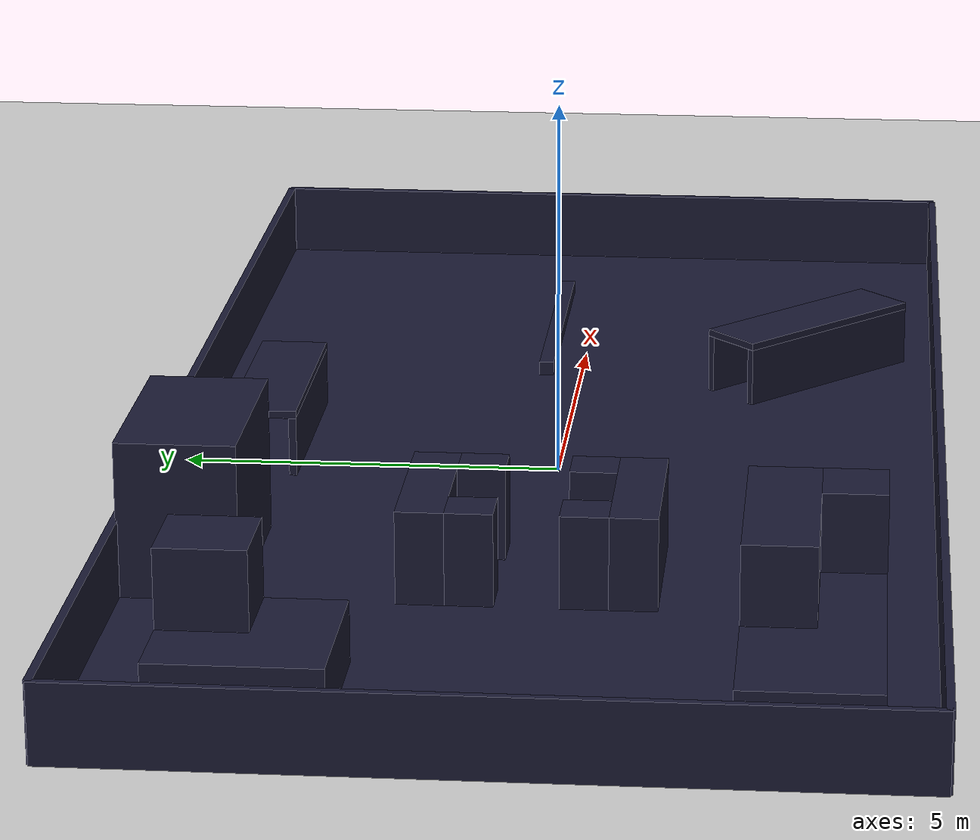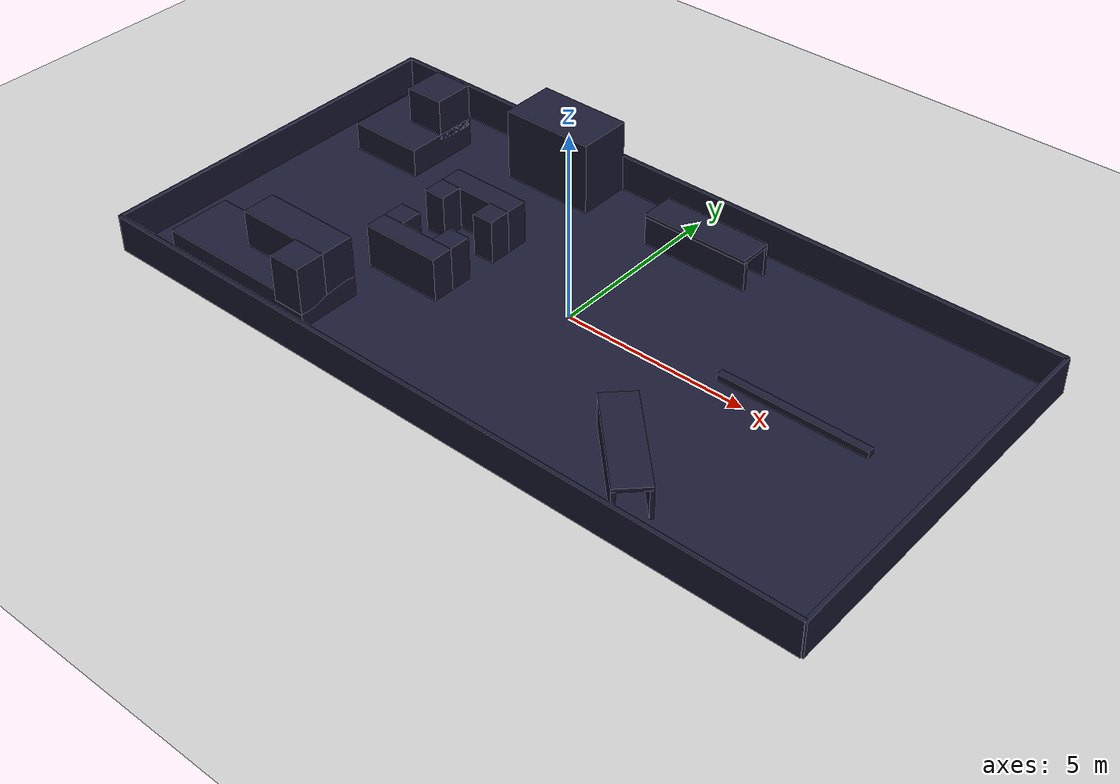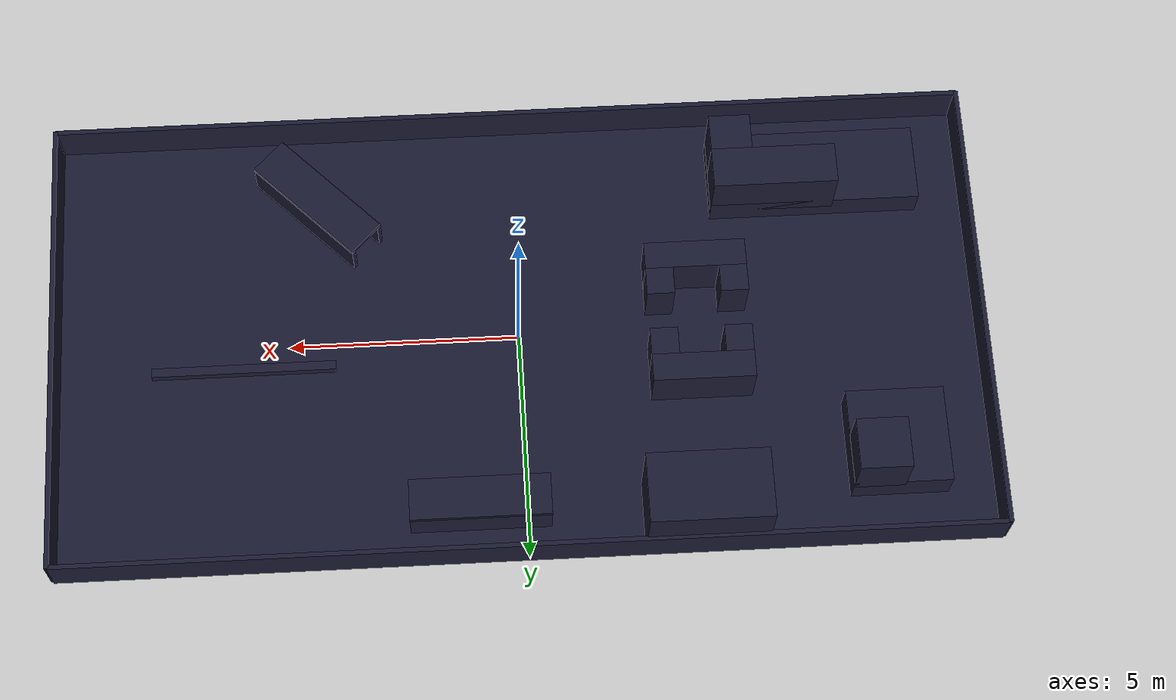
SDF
<?xml version="1.0" ?>
<sdf version="1.5">
  <world name="default">
    <physics type="ode">
        <ode>
            <solver>
                <iters>150</iters>
            </solver>
        </ode>
    </physics>
    <include>
      <uri>model://sun</uri>
    </include>

    <include>
      <uri>model://ground_plane</uri>
    </include>

    <model name="arena">
        <pose>0 0 0 0 0 0</pose>
        <static>true</static>
        <link name="link">
            <inertial>
                <mass>0.0</mass>
                <inertia>
                    <ixx>0.0</ixx>
                    <ixy>0.0</ixy>
                    <ixz>0.0</ixz>
                    <iyy>0.0</iyy>
                    <iyz>0.0</iyz>
                    <izz>0.0</izz>
                </inertia>
            </inertial>
            <collision name="collision">
                <geometry>
                    <box>
                        <size>20.05 10.05 0.005</size>
                    </box>
                </geometry>
            </collision>
            <visual name="visual">
                <geometry>
                    <box>
                        <size>20.05 10.05 0.005</size>
                    </box>
                </geometry>
                <material>
                    <ambient>0.0 0.9 0.0 1</ambient>
                    <diffuse>0.1 0.1 0.2 1</diffuse>
                    <specular>0 0 0 0</specular>
                    <emissive>0 0 0 1</emissive>
                </material>
            </visual>
        </link>
        <link name="link2">
            <pose>0 0 0.005 0 0 0</pose>
            <inertial>
                <mass>0.0</mass>
                <inertia>
                    <ixx>0.0</ixx>
                    <ixy>0.0</ixy>
                    <ixz>0.0</ixz>
                    <iyy>0.0</iyy>
                    <iyz>0.0</iyz>
                    <izz>0.0</izz>
                </inertia>
            </inertial>
            <collision name="collision">
                <geometry>
                    <box>
                        <size>20 10 0.005</size>
                    </box>
                </geometry>
            </collision>
            <visual name="visual">
                <geometry>
                    <box>
                        <size>20 10 0.005</size>
                    </box>
                </geometry>
                <material>
                    <ambient>0.9 0.9 0.9 1</ambient>
                    <diffuse>0.1 0.1 0.2 1</diffuse>
                    <specular>0 0 0 0</specular>
                    <emissive>0 0 0 1</emissive>
                </material>
            </visual>
        </link>
    </model>

<!-- Wall 1 (Top) -->
    <model name="wall1">
      <pose>0 5.025 0.5 0 0 0</pose>
      <static>true</static>
      <link name="link">
            <inertial>
                <mass>1000.0</mass>
                <inertia>
                    <ixx>0.0</ixx>
                    <ixy>0.0</ixy>
                    <ixz>0.0</ixz>
                    <iyy>0.0</iyy>
                    <iyz>0.0</iyz>
                    <izz>0.0</izz>
                </inertia>
            </inertial>
        <collision name="collision">
          <geometry>
            <box>
              <size>20.1 0.1 1</size>
            </box>
          </geometry>
        </collision>
        <visual name="visual">
          <geometry>
            <box>
              <size>20.1 0.1 1</size>
            </box>
          </geometry>
          <material>
              <ambient>0.9 0.3 0.9 1</ambient>
              <diffuse>0.1 0.1 0.2 1</diffuse>
              <specular>0 0 0 0</specular>
              <emissive>0 0 0 1</emissive>
          </material>
        </visual>
      </link>
    </model>

    <!-- Wall 2 (Bottom) -->
    <model name="wall2">
      <pose>0 -5.025 0.5 0 0 0</pose>
      <static>true</static>
      <link name="link">
            <inertial>
                <mass>1000.0</mass>
                <inertia>
                    <ixx>0.0</ixx>
                    <ixy>0.0</ixy>
                    <ixz>0.0</ixz>
                    <iyy>0.0</iyy>
                    <iyz>0.0</iyz>
                    <izz>0.0</izz>
                </inertia>
            </inertial>
        <collision name="collision">
          <geometry>
            <box>
              <size>20.1 0.1 1</size>
            </box>
          </geometry>
        </collision>
        <visual name="visual">
          <geometry>
            <box>
              <size>20.1 0.1 1</size>
            </box>
          </geometry>
          <material>
            <ambient>0.9 0.3 0.9 1</ambient>
            <diffuse>0.1 0.1 0.2 1</diffuse>
            <specular>0 0 0 0</specular>
            <emissive>0 0 0 1</emissive>
          </material>
        </visual>
      </link>
    </model>

    <!-- Wall 3 (Left) -->
    <model name="wall3">
      <pose>-10.05 0 0.5 0 0 0</pose>
      <static>true</static>
      <link name="link">
            <inertial>
                <mass>1000.0</mass>
                <inertia>
                    <ixx>0.0</ixx>
                    <ixy>0.0</ixy>
                    <ixz>0.0</ixz>
                    <iyy>0.0</iyy>
                    <iyz>0.0</iyz>
                    <izz>0.0</izz>
                </inertia>
            </inertial>
        <collision name="collision">
          <geometry>
            <box>
              <size>0.1 10.1 1</size>
            </box>
          </geometry>
        </collision>
        <visual name="visual">
          <geometry>
            <box>
              <size>0.1 10.1 1</size>
            </box>
          </geometry>
          <material>
            <ambient>0.9 0.3 0.9 1</ambient>
        <diffuse>0.1 0.1 0.2 1</diffuse>
            <specular>0 0 0 0</specular>
            <emissive>0 0 0 1</emissive>
          </material>
        </visual>
      </link>
    </model>

    <!-- Wall 4 (Right) -->
    <model name="wall4">
      <pose>10.05 0 0.5 0 0 0</pose>
      <static>true</static>
      <link name="link">
        <inertial>
                <mass>1000.0</mass>
                <inertia>
                    <ixx>0.0</ixx>
                    <ixy>0.0</ixy>
                    <ixz>0.0</ixz>
                    <iyy>0.0</iyy>
                    <iyz>0.0</iyz>
                    <izz>0.0</izz>
                </inertia>
            </inertial>
        <collision name="collision">
          <geometry>
            <box>
              <size>0.1 10.1 1</size>
            </box>
          </geometry>
        </collision>
        <visual name="visual">
          <geometry>
            <box>
              <size>0.1 10.1 1</size>
            </box>
          </geometry>
          <material>
            <ambient>0.9 0.3 0.9 1</ambient>
            <diffuse>0.1 0.1 0.2 1</diffuse>
            <specular>0 0 0 0</specular>
            <emissive>0 0 0 1</emissive>
          </material>
        </visual>
      </link>
    </model>

    <model name="building_06">
        <pose>-7.95 2.95 0.40 0 0 0</pose>
        <static>true</static>
        <link name="link">
            <inertial>
                <mass>1000.0</mass>
                <inertia>
                    <ixx>0.0</ixx>
                    <ixy>0.0</ixy>
                    <ixz>0.0</ixz>
                    <iyy>0.0</iyy>
                    <iyz>0.0</iyz>
                    <izz>0.0</izz>
                </inertia>
            </inertial>
            <collision name="collision">
                <geometry>
                    <box>
                        <size>2.1 2.1 0.80</size>
                    </box>
                </geometry>
            </collision>
            <visual name="visual">
                <geometry>
                    <box>
                        <size>2.1 2.1 0.80</size>
                    </box>
                </geometry>
                <material>
                    <ambient>0.3 0.0 0.7 1</ambient>
                    <diffuse>0.1 0.1 0.2 1</diffuse>
                    <specular>0 0 0 0</specular>
                    <emissive>0 0 0 1</emissive>
                </material>
            </visual>
        </link>
        <link name="link2">
            <pose>0.5 0.5 0.8 0 0 0</pose>
            <inertial>
                <mass>1000.0</mass>
                <inertia>
                    <ixx>0.0</ixx>
                    <ixy>0.0</ixy>
                    <ixz>0.0</ixz>
                    <iyy>0.0</iyy>
                    <iyz>0.0</iyz>
                    <izz>0.0</izz>
                </inertia>
            </inertial>
            <collision name="collision">
                <geometry>
                    <box>
                        <size>1.10 1.10 1.2</size>
                    </box>
                </geometry>
            </collision>
            <visual name="visual">
                <geometry>
                    <box>
                        <size>1.10 1.10 1.2</size>
                    </box>
                </geometry>
                <material>
                    <ambient>0.3 0.0 0.7 1</ambient>
                    <diffuse>0.1 0.1 0.2 1</diffuse>
                    <specular>0 0 0 0</specular>
                    <emissive>0 0 0 1</emissive>
                </material>
            </visual>
        </link>
    </model>

    <model name="building_09">
        <pose>-3.75 4.25 1.00 0 0 0</pose>
        <static>true</static>
        <link name="link">
            <inertial>
                <mass>1000.0</mass>
                <inertia>
                    <ixx>0.0</ixx>
                    <ixy>0.0</ixy>
                    <ixz>0.0</ixz>
                    <iyy>0.0</iyy>
                    <iyz>0.0</iyz>
                    <izz>0.0</izz>
                </inertia>
            </inertial>
            <collision name="collision">
                <geometry>
                    <box>
                        <size>2.6 1.5 2.0</size>
                    </box>
                </geometry>
            </collision>
            <visual name="visual">
                <geometry>
                    <box>
                        <size>2.6 1.5 2.0</size>
                    </box>
                </geometry>
                <material>
                    <ambient>0.5 0.5 0.1 1</ambient>
                    <diffuse>0.1 0.1 0.2 1</diffuse>
                    <specular>0 0 0 0</specular>
                    <emissive>0 0 0 1</emissive>
                </material>
            </visual>
        </link>
    </model>

    <model name="building_03a">
        <pose>-3.9 1.3 0.60 0 0 0</pose>
        <static>true</static>
        <link name="link">
            <inertial>
                <mass>1000.0</mass>
                <inertia>
                    <ixx>0.0</ixx>
                    <ixy>0.0</ixy>
                    <ixz>0.0</ixz>
                    <iyy>0.0</iyy>
                    <iyz>0.0</iyz>
                    <izz>0.0</izz>
                </inertia>
            </inertial>
            <collision name="collision">
                <geometry>
                    <box>
                        <size>2.20 0.6 1.20</size>
                    </box>
                </geometry>
            </collision>
            <visual name="visual">
                <geometry>
                    <box>
                        <size>2.20 0.6 1.20</size>
                    </box>
                </geometry>
                <material>
                    <ambient>0.3 0.0 0.7 1</ambient>
                    <diffuse>0.1 0.1 0.2 1</diffuse>
                    <specular>0 0 0 0</specular>
                    <emissive>0 0 0 1</emissive>
                </material>
            </visual>
        </link>
        <link name="link2">
            <pose>0.8 -0.6 0 0 0 0</pose>
            <inertial>
                <mass>1000.0</mass>
                <inertia>
                    <ixx>0.0</ixx>
                    <ixy>0.0</ixy>
                    <ixz>0.0</ixz>
                    <iyy>0.0</iyy>
                    <iyz>0.0</iyz>
                    <izz>0.0</izz>
                </inertia>
            </inertial>
            <collision name="collision">
                <geometry>
                    <box>
                        <size>.6 0.6 1.20</size>
                    </box>
                </geometry>
            </collision>
            <visual name="visual">
                <geometry>
                    <box>
                        <size>.6 0.6 1.20</size>
                    </box>
                </geometry>
                <material>
                    <ambient>0.3 0.0 0.7 1</ambient>
                    <diffuse>0.1 0.1 0.2 1</diffuse>
                    <specular>0 0 0 0</specular>
                    <emissive>0 0 0 1</emissive>
                </material>
            </visual>
        </link>
        <link name="link3">
            <pose>-0.8 -0.6 0 0 0 0</pose>
            <inertial>
                <mass>1000.0</mass>
                <inertia>
                    <ixx>0.0</ixx>
                    <ixy>0.0</ixy>
                    <ixz>0.0</ixz>
                    <iyy>0.0</iyy>
                    <iyz>0.0</iyz>
                    <izz>0.0</izz>
                </inertia>
            </inertial>
            <collision name="collision">
                <geometry>
                    <box>
                        <size>.6 0.6 1.20</size>
                    </box>
                </geometry>
            </collision>
            <visual name="visual">
                <geometry>
                    <box>
                        <size>.6 0.6 1.20</size>
                    </box>
                </geometry>
                <material>
                    <ambient>0.3 0.0 0.7 1</ambient>
                    <diffuse>0.1 0.1 0.2 1</diffuse>
                    <specular>0 0 0 0</specular>
                    <emissive>0 0 0 1</emissive>
                </material>
            </visual>
        </link>
    </model>

    <model name="building_03b">
        <pose>-3.9 -1.3 0.60 0 0 0</pose>
        <static>true</static>
        <link name="link">
            <inertial>
                <mass>1000.0</mass>
                <inertia>
                    <ixx>0.0</ixx>
                    <ixy>0.0</ixy>
                    <ixz>0.0</ixz>
                    <iyy>0.0</iyy>
                    <iyz>0.0</iyz>
                    <izz>0.0</izz>
                </inertia>
            </inertial>
            <collision name="collision">
                <geometry>
                    <box>
                        <size>2.20 0.6 1.20</size>
                    </box>
                </geometry>
            </collision>
            <visual name="visual">
                <geometry>
                    <box>
                        <size>2.20 0.6 1.20</size>
                    </box>
                </geometry>
                <material>
                    <ambient>0.3 0.0 0.7 1</ambient>
                    <diffuse>0.1 0.1 0.2 1</diffuse>
                    <specular>0 0 0 0</specular>
                    <emissive>0 0 0 1</emissive>
                </material>
            </visual>
        </link>
        <link name="link2">
            <pose>0.8 0.6 0 0 0 0</pose>
            <inertial>
                <mass>1000.0</mass>
                <inertia>
                    <ixx>0.0</ixx>
                    <ixy>0.0</ixy>
                    <ixz>0.0</ixz>
                    <iyy>0.0</iyy>
                    <iyz>0.0</iyz>
                    <izz>0.0</izz>
                </inertia>
            </inertial>
            <collision name="collision">
                <geometry>
                    <box>
                        <size>.6 0.6 1.20</size>
                    </box>
                </geometry>
            </collision>
            <visual name="visual">
                <geometry>
                    <box>
                        <size>.6 0.6 1.20</size>
                    </box>
                </geometry>
                <material>
                    <ambient>0.3 0.0 0.7 1</ambient>
                    <diffuse>0.1 0.1 0.2 1</diffuse>
                    <specular>0 0 0 0</specular>
                    <emissive>0 0 0 1</emissive>
                </material>
            </visual>
        </link>
        <link name="link3">
            <pose>-0.8 0.6 0 0 0 0</pose>
            <inertial>
                <mass>1000.0</mass>
                <inertia>
                    <ixx>0.0</ixx>
                    <ixy>0.0</ixy>
                    <ixz>0.0</ixz>
                    <iyy>0.0</iyy>
                    <iyz>0.0</iyz>
                    <izz>0.0</izz>
                </inertia>
            </inertial>
            <collision name="collision">
                <geometry>
                    <box>
                        <size>.6 0.6 1.20</size>
                    </box>
                </geometry>
            </collision>
            <visual name="visual">
                <geometry>
                    <box>
                        <size>.6 0.6 1.20</size>
                    </box>
                </geometry>
                <material>
                    <ambient>0.3 0.0 0.7 1</ambient>
                    <diffuse>0.1 0.1 0.2 1</diffuse>
                    <specular>0 0 0 0</specular>
                    <emissive>0 0 0 1</emissive>
                </material>
            </visual>
        </link>
    </model>

    <model name="building_10">
        <pose>-6.7 -3.5 0.35 0 0 0</pose>
        <static>true</static>
        <link name="link">
            <inertial>
                <mass>1000.0</mass>
                <inertia>
                    <ixx>0.0</ixx>
                    <ixy>0.0</ixy>
                    <ixz>0.0</ixz>
                    <iyy>0.0</iyy>
                    <iyz>0.0</iyz>
                    <izz>0.0</izz>
                </inertia>
            </inertial>
            <collision name="collision">
                <geometry>
                    <box>
                        <size>4.6 1.7 0.70</size>
                    </box>
                </geometry>
            </collision>
            <visual name="visual">
                <geometry>
                    <box>
                        <size>4.6 1.7 0.70</size>
                    </box>
                </geometry>
                <material>
                    <ambient>0.8 0.8 0.3 1</ambient>
                    <diffuse>0.1 0.1 0.2 1</diffuse>
                    <specular>0 0 0 0</specular>
                    <emissive>0 0 0 1</emissive>
                </material>
            </visual>
        </link>
        <link name="link2">
            <pose>0.95 0.4 0.7 0 0 0</pose>
            <inertial>
                <mass>1000.0</mass>
                <inertia>
                    <ixx>0.0</ixx>
                    <ixy>0.0</ixy>
                    <ixz>0.0</ixz>
                    <iyy>0.0</iyy>
                    <iyz>0.0</iyz>
                    <izz>0.0</izz>
                </inertia>
            </inertial>
            <collision name="collision">
                <geometry>
                    <box>
                        <size>2.70 0.90 1.3</size>
                    </box>
                </geometry>
            </collision>
            <visual name="visual">
                <geometry>
                    <box>
                        <size>2.70 0.90 1.3</size>
                    </box>
                </geometry>
                <material>
                    <ambient>0.8 0.8 0.3 1</ambient>
                    <diffuse>0.1 0.1 0.2 1</diffuse>
                    <specular>0 0 0 0</specular>
                    <emissive>0 0 0 1</emissive>
                </material>
            </visual>
        </link>
        <link name="link3">
            <pose>1.85 -0.45 0.7 0 0 0</pose>
            <inertial>
                <mass>1000.0</mass>
                <inertia>
                    <ixx>0.0</ixx>
                    <ixy>0.0</ixy>
                    <ixz>0.0</ixz>
                    <iyy>0.0</iyy>
                    <iyz>0.0</iyz>
                    <izz>0.0</izz>
                </inertia>
            </inertial>
            <collision name="collision">
                <geometry>
                    <box>
                        <size>0.90 0.80 1.3</size>
                    </box>
                </geometry>
            </collision>
            <visual name="visual">
                <geometry>
                    <box>
                        <size>0.90 0.80 1.3</size>
                    </box>
                </geometry>
                <material>
                    <ambient>0.8 0.8 0.3 1</ambient>
                    <diffuse>0.1 0.1 0.2 1</diffuse>
                    <specular>0 0 0 0</specular>
                    <emissive>0 0 0 1</emissive>
                </material>
            </visual>
        </link>
    </model>

    <model name="unknown_obs">
        <pose>6 0.5 0.1 0 0 0</pose>
        <static>true</static>
        <link name="link">
            <inertial>
                <mass>1000.0</mass>
                <inertia>
                    <ixx>0.0</ixx>
                    <ixy>0.0</ixy>
                    <ixz>0.0</ixz>
                    <iyy>0.0</iyy>
                    <iyz>0.0</iyz>
                    <izz>0.0</izz>
                </inertia>
            </inertial>
            <collision name="collision">
                <geometry>
                    <box>
                        <size>4 0.2 0.20</size>
                    </box>
                </geometry>
            </collision>
            <visual name="visual">
                <geometry>
                    <box>
                        <size>4 0.2 0.20</size>
                    </box>
                </geometry>
                <material>
                    <ambient>0.5 0.5 0.1 1</ambient>
                    <diffuse>0.1 0.1 0.2 1</diffuse>
                    <specular>0 0 0 0</specular>
                    <emissive>0 0 0 1</emissive>
                </material>
            </visual>
        </link>
    </model>

    <model name="tunnel_00">
        <pose>4 -3.5 0.4 0 0 -0.7853975</pose>
        <static>true</static>
        <link name="link">
            <inertial>
                <mass>1000.0</mass>
                <inertia>
                    <ixx>0.0</ixx>
                    <ixy>0.0</ixy>
                    <ixz>0.0</ixz>
                    <iyy>0.0</iyy>
                    <iyz>0.0</iyz>
                    <izz>0.0</izz>
                </inertia>
            </inertial>
            <collision name="collision">
                <geometry>
                    <box>
                        <size>3 0.1 0.80</size>
                    </box>
                </geometry>
            </collision>
            <visual name="visual">
                <geometry>
                    <box>
                        <size>3 0.1 0.80</size>
                    </box>
                </geometry>
                <material>
                    <ambient>0.9 0.3 0.9 1</ambient>
                    <diffuse>0.1 0.1 0.2 1</diffuse>
                    <specular>0 0 0 0</specular>
                    <emissive>0 0 0 1</emissive>
                </material>
            </visual>
        </link>
        <link name="link1">
            <pose>0 0.8 0 0 0 0</pose>
            <inertial>
                <mass>1000.0</mass>
                <inertia>
                    <ixx>0.0</ixx>
                    <ixy>0.0</ixy>
                    <ixz>0.0</ixz>
                    <iyy>0.0</iyy>
                    <iyz>0.0</iyz>
                    <izz>0.0</izz>
                </inertia>
            </inertial>
            <collision name="collision">
                <geometry>
                    <box>
                        <size>3 0.1 0.80</size>
                    </box>
                </geometry>
            </collision>
            <visual name="visual">
                <geometry>
                    <box>
                        <size>3 0.1 0.80</size>
                    </box>
                </geometry>
                <material>
                    <ambient>0.9 0.3 0.9 1</ambient>
                    <diffuse>0.1 0.1 0.2 1</diffuse>
                    <specular>0 0 0 0</specular>
                    <emissive>0 0 0 1</emissive>
                </material>
            </visual>
        </link>
        <link name="link2">
            <pose>0 0.4 0.45 0 0 0</pose>
            <inertial>
                <mass>1000.0</mass>
                <inertia>
                    <ixx>0.0</ixx>
                    <ixy>0.0</ixy>
                    <ixz>0.0</ixz>
                    <iyy>0.0</iyy>
                    <iyz>0.0</iyz>
                    <izz>0.0</izz>
                </inertia>
            </inertial>
            <collision name="collision">
                <geometry>
                    <box>
                        <size>3 0.9 0.10</size>
                    </box>
                </geometry>
            </collision>
            <visual name="visual">
                <geometry>
                    <box>
                        <size>3 0.9 0.10</size>
                    </box>
                </geometry>
                <material>
                    <ambient>0.9 0.3 0.9 1</ambient>
                    <diffuse>0.1 0.1 0.2 1</diffuse>
                    <specular>0 0 0 0</specular>
                    <emissive>0 0 0 1</emissive>
                </material>
            </visual>
        </link>
    </model>

    <model name="tunnel_01">
        <pose>1 3.5 0.4 0 0 0</pose>
        <static>true</static>
        <link name="link">
            <inertial>
                <mass>1000.0</mass>
                <inertia>
                    <ixx>0.0</ixx>
                    <ixy>0.0</ixy>
                    <ixz>0.0</ixz>
                    <iyy>0.0</iyy>
                    <iyz>0.0</iyz>
                    <izz>0.0</izz>
                </inertia>
            </inertial>
            <collision name="collision">
                <geometry>
                    <box>
                        <size>3 0.1 0.80</size>
                    </box>
                </geometry>
            </collision>
            <visual name="visual">
                <geometry>
                    <box>
                        <size>3 0.1 0.80</size>
                    </box>
                </geometry>
                <material>
                    <ambient>0.9 0.3 0.9 1</ambient>
                    <diffuse>0.1 0.1 0.2 1</diffuse>
                    <specular>0 0 0 0</specular>
                    <emissive>0 0 0 1</emissive>
                </material>
            </visual>
        </link>
        <link name="link1">
            <pose>0 0.8 0 0 0 0</pose>
            <inertial>
                <mass>1000.0</mass>
                <inertia>
                    <ixx>0.0</ixx>
                    <ixy>0.0</ixy>
                    <ixz>0.0</ixz>
                    <iyy>0.0</iyy>
                    <iyz>0.0</iyz>
                    <izz>0.0</izz>
                </inertia>
            </inertial>
            <collision name="collision">
                <geometry>
                    <box>
                        <size>3 0.1 0.80</size>
                    </box>
                </geometry>
            </collision>
            <visual name="visual">
                <geometry>
                    <box>
                        <size>3 0.1 0.80</size>
                    </box>
                </geometry>
                <material>
                    <ambient>0.9 0.3 0.9 1</ambient>
                    <diffuse>0.1 0.1 0.2 1</diffuse>
                    <specular>0 0 0 0</specular>
                    <emissive>0 0 0 1</emissive>
                </material>
            </visual>
        </link>
        <link name="link2">
            <pose>0 0.4 0.45 0 0 0</pose>
            <inertial>
                <mass>1000.0</mass>
                <inertia>
                    <ixx>0.0</ixx>
                    <ixy>0.0</ixy>
                    <ixz>0.0</ixz>
                    <iyy>0.0</iyy>
                    <iyz>0.0</iyz>
                    <izz>0.0</izz>
                </inertia>
            </inertial>
            <collision name="collision">
                <geometry>
                    <box>
                        <size>3 0.9 0.10</size>
                    </box>
                </geometry>
            </collision>
            <visual name="visual">
                <geometry>
                    <box>
                        <size>3 0.9 0.10</size>
                    </box>
                </geometry>
                <material>
                    <ambient>0.9 0.3 0.9 1</ambient>
                    <diffuse>0.1 0.1 0.2 1</diffuse>
                    <specular>0 0 0 0</specular>
                    <emissive>0 0 0 1</emissive>
                </material>
            </visual>
        </link>
    </model>

  </world>
</sdf>
